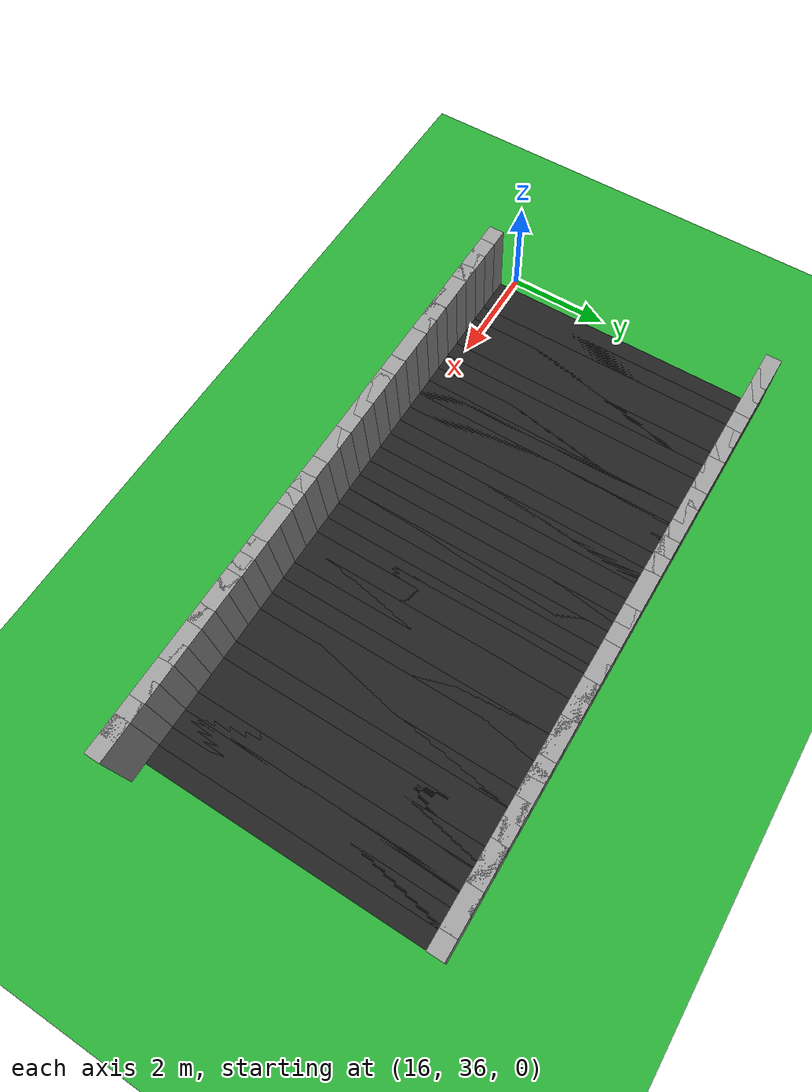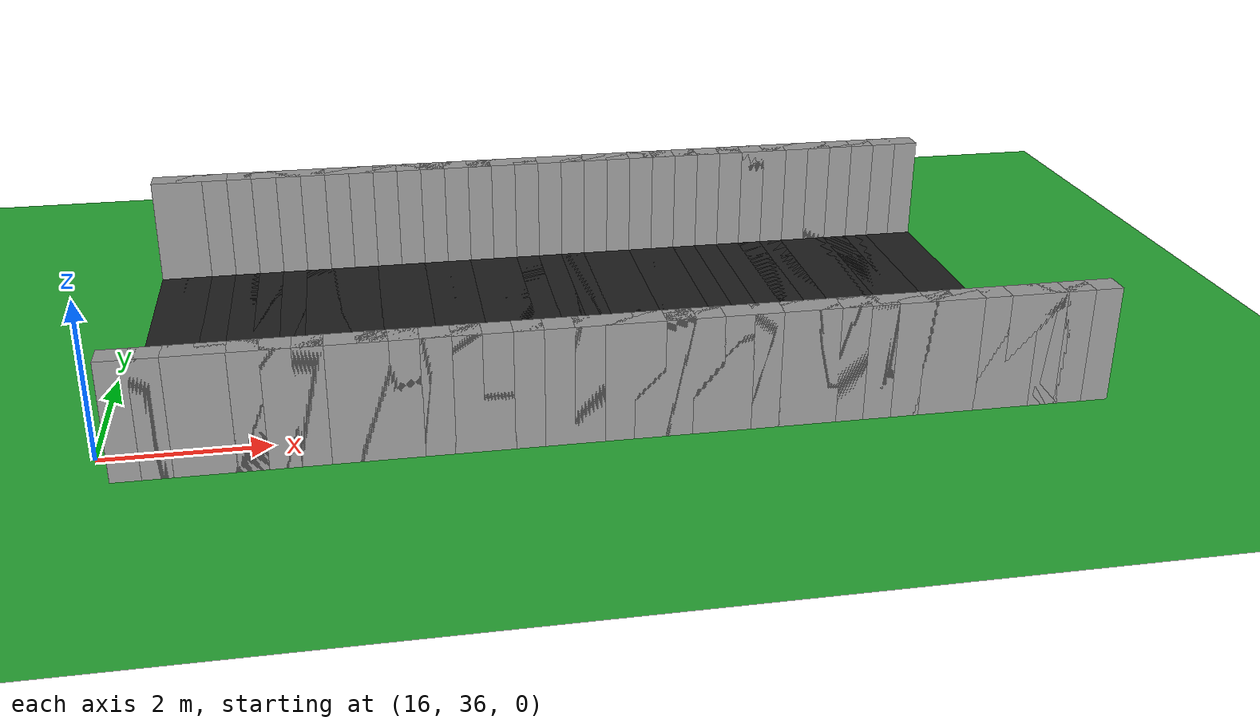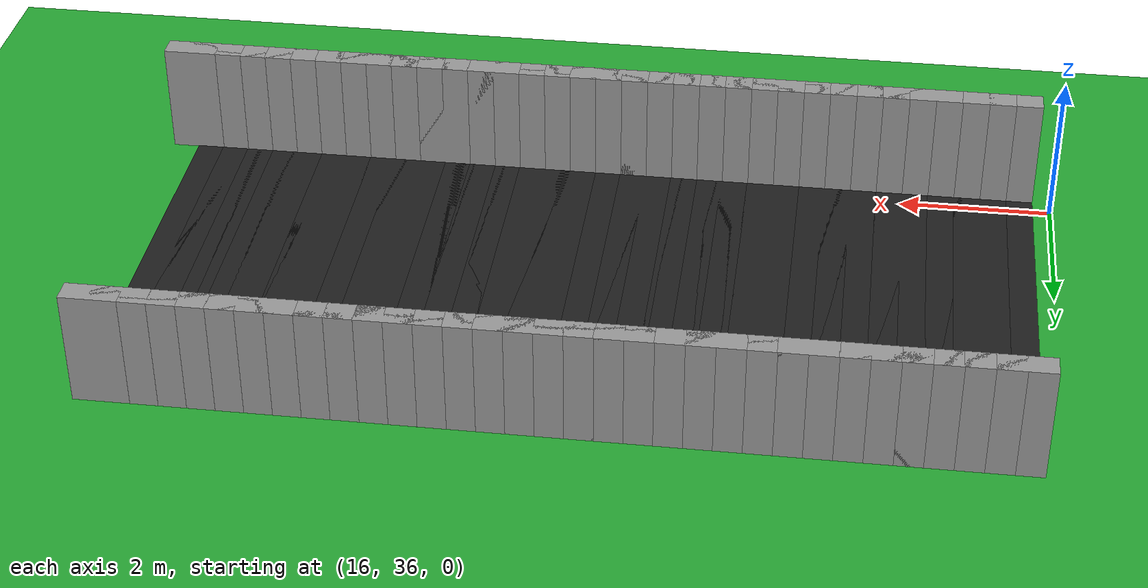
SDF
<sdf version="1.6">
 <world name="loop_speedloop">
  <include><uri>model://sun</uri></include>
  <model name="ground_plane">
   <static>true</static>
   <link name="link">
    <collision name="collision">
     <surface><friction><ode><mu>100</mu><mu2>50</mu2></ode></friction></surface>
     <geometry><plane><normal>0 0 1</normal><size>120 120</size></plane></geometry>
    </collision>
    <visual name="visual">
     <geometry><plane><normal>0 0 1</normal><size>120 120</size></plane></geometry>
     <material>
      <script><uri>file://media/materials/scripts/gazebo.material</uri><name>Gazebo/Green</name></script>
     </material>
    </visual>
   </link>
  </model>
  <model name="curbL_273">
   <static>true</static>
   <pose>27.776 35.602 0.750 0 0 3.14159</pose>
   <link name="link">
    <collision name="collision"><geometry><box><size>0.710 0.300 1.500</size></box></geometry></collision>
    <visual name="visual">
     <geometry><box><size>0.710 0.300 1.500</size></box></geometry>
     <material>
      <script><uri>file://media/materials/scripts/gazebo.material</uri><name>Gazebo/Grey</name></script>
     </material>
    </visual>
   </link>
  </model>
  <model name="asphalt_274">
   <static>true</static>
   <pose>27.426 38.502 0.005 0 0 3.14159</pose>
   <link name="link">
    <visual name="visual">
     <geometry><box><size>0.710 5.500 0.010</size></box></geometry>
     <material>
      <script><uri>file://media/materials/scripts/gazebo.material</uri><name>Gazebo/Black</name></script>
     </material>
    </visual>
   </link>
  </model>
  <model name="curbL_274">
   <static>true</static>
   <pose>27.426 35.602 0.750 0 0 3.14159</pose>
   <link name="link">
    <collision name="collision"><geometry><box><size>0.710 0.300 1.500</size></box></geometry></collision>
    <visual name="visual">
     <geometry><box><size>0.710 0.300 1.500</size></box></geometry>
     <material>
      <script><uri>file://media/materials/scripts/gazebo.material</uri><name>Gazebo/Grey</name></script>
     </material>
    </visual>
   </link>
  </model>
  <model name="curbR_274">
   <static>true</static>
   <pose>27.426 41.402 0.750 0 0 3.14159</pose>
   <link name="link">
    <collision name="collision"><geometry><box><size>0.710 0.300 1.500</size></box></geometry></collision>
    <visual name="visual">
     <geometry><box><size>0.710 0.300 1.500</size></box></geometry>
     <material>
      <script><uri>file://media/materials/scripts/gazebo.material</uri><name>Gazebo/Grey</name></script>
     </material>
    </visual>
   </link>
  </model>
  <model name="asphalt_275">
   <static>true</static>
   <pose>27.076 38.502 0.005 0 0 3.14159</pose>
   <link name="link">
    <visual name="visual">
     <geometry><box><size>0.710 5.500 0.010</size></box></geometry>
     <material>
      <script><uri>file://media/materials/scripts/gazebo.material</uri><name>Gazebo/Black</name></script>
     </material>
    </visual>
   </link>
  </model>
  <model name="curbL_275">
   <static>true</static>
   <pose>27.076 35.602 0.750 0 0 3.14159</pose>
   <link name="link">
    <collision name="collision"><geometry><box><size>0.710 0.300 1.500</size></box></geometry></collision>
    <visual name="visual">
     <geometry><box><size>0.710 0.300 1.500</size></box></geometry>
     <material>
      <script><uri>file://media/materials/scripts/gazebo.material</uri><name>Gazebo/Grey</name></script>
     </material>
    </visual>
   </link>
  </model>
  <model name="curbR_275">
   <static>true</static>
   <pose>27.076 41.402 0.750 0 0 3.14159</pose>
   <link name="link">
    <collision name="collision"><geometry><box><size>0.710 0.300 1.500</size></box></geometry></collision>
    <visual name="visual">
     <geometry><box><size>0.710 0.300 1.500</size></box></geometry>
     <material>
      <script><uri>file://media/materials/scripts/gazebo.material</uri><name>Gazebo/Grey</name></script>
     </material>
    </visual>
   </link>
  </model>
  <model name="asphalt_276">
   <static>true</static>
   <pose>26.726 38.502 0.005 0 0 3.14159</pose>
   <link name="link">
    <visual name="visual">
     <geometry><box><size>0.710 5.500 0.010</size></box></geometry>
     <material>
      <script><uri>file://media/materials/scripts/gazebo.material</uri><name>Gazebo/Black</name></script>
     </material>
    </visual>
   </link>
  </model>
  <model name="curbL_276">
   <static>true</static>
   <pose>26.726 35.602 0.750 0 0 3.14159</pose>
   <link name="link">
    <collision name="collision"><geometry><box><size>0.710 0.300 1.500</size></box></geometry></collision>
    <visual name="visual">
     <geometry><box><size>0.710 0.300 1.500</size></box></geometry>
     <material>
      <script><uri>file://media/materials/scripts/gazebo.material</uri><name>Gazebo/Grey</name></script>
     </material>
    </visual>
   </link>
  </model>
  <model name="curbR_276">
   <static>true</static>
   <pose>26.726 41.402 0.750 0 0 3.14159</pose>
   <link name="link">
    <collision name="collision"><geometry><box><size>0.710 0.300 1.500</size></box></geometry></collision>
    <visual name="visual">
     <geometry><box><size>0.710 0.300 1.500</size></box></geometry>
     <material>
      <script><uri>file://media/materials/scripts/gazebo.material</uri><name>Gazebo/Grey</name></script>
     </material>
    </visual>
   </link>
  </model>
  <model name="asphalt_277">
   <static>true</static>
   <pose>26.376 38.502 0.005 0 0 3.14159</pose>
   <link name="link">
    <visual name="visual">
     <geometry><box><size>0.710 5.500 0.010</size></box></geometry>
     <material>
      <script><uri>file://media/materials/scripts/gazebo.material</uri><name>Gazebo/Black</name></script>
     </material>
    </visual>
   </link>
  </model>
  <model name="curbL_277">
   <static>true</static>
   <pose>26.376 35.602 0.750 0 0 3.14159</pose>
   <link name="link">
    <collision name="collision"><geometry><box><size>0.710 0.300 1.500</size></box></geometry></collision>
    <visual name="visual">
     <geometry><box><size>0.710 0.300 1.500</size></box></geometry>
     <material>
      <script><uri>file://media/materials/scripts/gazebo.material</uri><name>Gazebo/Grey</name></script>
     </material>
    </visual>
   </link>
  </model>
  <model name="curbR_277">
   <static>true</static>
   <pose>26.376 41.402 0.750 0 0 3.14159</pose>
   <link name="link">
    <collision name="collision"><geometry><box><size>0.710 0.300 1.500</size></box></geometry></collision>
    <visual name="visual">
     <geometry><box><size>0.710 0.300 1.500</size></box></geometry>
     <material>
      <script><uri>file://media/materials/scripts/gazebo.material</uri><name>Gazebo/Grey</name></script>
     </material>
    </visual>
   </link>
  </model>
  <model name="asphalt_278">
   <static>true</static>
   <pose>26.026 38.502 0.005 0 0 3.14159</pose>
   <link name="link">
    <visual name="visual">
     <geometry><box><size>0.710 5.500 0.010</size></box></geometry>
     <material>
      <script><uri>file://media/materials/scripts/gazebo.material</uri><name>Gazebo/Black</name></script>
     </material>
    </visual>
   </link>
  </model>
  <model name="curbL_278">
   <static>true</static>
   <pose>26.026 35.602 0.750 0 0 3.14159</pose>
   <link name="link">
    <collision name="collision"><geometry><box><size>0.710 0.300 1.500</size></box></geometry></collision>
    <visual name="visual">
     <geometry><box><size>0.710 0.300 1.500</size></box></geometry>
     <material>
      <script><uri>file://media/materials/scripts/gazebo.material</uri><name>Gazebo/Grey</name></script>
     </material>
    </visual>
   </link>
  </model>
  <model name="curbR_278">
   <static>true</static>
   <pose>26.026 41.402 0.750 0 0 3.14159</pose>
   <link name="link">
    <collision name="collision"><geometry><box><size>0.710 0.300 1.500</size></box></geometry></collision>
    <visual name="visual">
     <geometry><box><size>0.710 0.300 1.500</size></box></geometry>
     <material>
      <script><uri>file://media/materials/scripts/gazebo.material</uri><name>Gazebo/Grey</name></script>
     </material>
    </visual>
   </link>
  </model>
  <model name="asphalt_279">
   <static>true</static>
   <pose>25.676 38.502 0.005 0 0 3.14159</pose>
   <link name="link">
    <visual name="visual">
     <geometry><box><size>0.710 5.500 0.010</size></box></geometry>
     <material>
      <script><uri>file://media/materials/scripts/gazebo.material</uri><name>Gazebo/Black</name></script>
     </material>
    </visual>
   </link>
  </model>
  <model name="curbL_279">
   <static>true</static>
   <pose>25.676 35.602 0.750 0 0 3.14159</pose>
   <link name="link">
    <collision name="collision"><geometry><box><size>0.710 0.300 1.500</size></box></geometry></collision>
    <visual name="visual">
     <geometry><box><size>0.710 0.300 1.500</size></box></geometry>
     <material>
      <script><uri>file://media/materials/scripts/gazebo.material</uri><name>Gazebo/Grey</name></script>
     </material>
    </visual>
   </link>
  </model>
  <model name="curbR_279">
   <static>true</static>
   <pose>25.676 41.402 0.750 0 0 3.14159</pose>
   <link name="link">
    <collision name="collision"><geometry><box><size>0.710 0.300 1.500</size></box></geometry></collision>
    <visual name="visual">
     <geometry><box><size>0.710 0.300 1.500</size></box></geometry>
     <material>
      <script><uri>file://media/materials/scripts/gazebo.material</uri><name>Gazebo/Grey</name></script>
     </material>
    </visual>
   </link>
  </model>
  <model name="asphalt_280">
   <static>true</static>
   <pose>25.326 38.502 0.005 0 0 3.14159</pose>
   <link name="link">
    <visual name="visual">
     <geometry><box><size>0.710 5.500 0.010</size></box></geometry>
     <material>
      <script><uri>file://media/materials/scripts/gazebo.material</uri><name>Gazebo/Black</name></script>
     </material>
    </visual>
   </link>
  </model>
  <model name="curbL_280">
   <static>true</static>
   <pose>25.326 35.602 0.750 0 0 3.14159</pose>
   <link name="link">
    <collision name="collision"><geometry><box><size>0.710 0.300 1.500</size></box></geometry></collision>
    <visual name="visual">
     <geometry><box><size>0.710 0.300 1.500</size></box></geometry>
     <material>
      <script><uri>file://media/materials/scripts/gazebo.material</uri><name>Gazebo/Grey</name></script>
     </material>
    </visual>
   </link>
  </model>
  <model name="curbR_280">
   <static>true</static>
   <pose>25.326 41.402 0.750 0 0 3.14159</pose>
   <link name="link">
    <collision name="collision"><geometry><box><size>0.710 0.300 1.500</size></box></geometry></collision>
    <visual name="visual">
     <geometry><box><size>0.710 0.300 1.500</size></box></geometry>
     <material>
      <script><uri>file://media/materials/scripts/gazebo.material</uri><name>Gazebo/Grey</name></script>
     </material>
    </visual>
   </link>
  </model>
  <model name="asphalt_281">
   <static>true</static>
   <pose>24.976 38.502 0.005 0 0 3.14159</pose>
   <link name="link">
    <visual name="visual">
     <geometry><box><size>0.710 5.500 0.010</size></box></geometry>
     <material>
      <script><uri>file://media/materials/scripts/gazebo.material</uri><name>Gazebo/Black</name></script>
     </material>
    </visual>
   </link>
  </model>
  <model name="curbL_281">
   <static>true</static>
   <pose>24.976 35.602 0.750 0 0 3.14159</pose>
   <link name="link">
    <collision name="collision"><geometry><box><size>0.710 0.300 1.500</size></box></geometry></collision>
    <visual name="visual">
     <geometry><box><size>0.710 0.300 1.500</size></box></geometry>
     <material>
      <script><uri>file://media/materials/scripts/gazebo.material</uri><name>Gazebo/Grey</name></script>
     </material>
    </visual>
   </link>
  </model>
  <model name="curbR_281">
   <static>true</static>
   <pose>24.976 41.402 0.750 0 0 3.14159</pose>
   <link name="link">
    <collision name="collision"><geometry><box><size>0.710 0.300 1.500</size></box></geometry></collision>
    <visual name="visual">
     <geometry><box><size>0.710 0.300 1.500</size></box></geometry>
     <material>
      <script><uri>file://media/materials/scripts/gazebo.material</uri><name>Gazebo/Grey</name></script>
     </material>
    </visual>
   </link>
  </model>
  <model name="asphalt_282">
   <static>true</static>
   <pose>24.626 38.502 0.005 0 0 3.14159</pose>
   <link name="link">
    <visual name="visual">
     <geometry><box><size>0.710 5.500 0.010</size></box></geometry>
     <material>
      <script><uri>file://media/materials/scripts/gazebo.material</uri><name>Gazebo/Black</name></script>
     </material>
    </visual>
   </link>
  </model>
  <model name="curbL_282">
   <static>true</static>
   <pose>24.626 35.602 0.750 0 0 3.14159</pose>
   <link name="link">
    <collision name="collision"><geometry><box><size>0.710 0.300 1.500</size></box></geometry></collision>
    <visual name="visual">
     <geometry><box><size>0.710 0.300 1.500</size></box></geometry>
     <material>
      <script><uri>file://media/materials/scripts/gazebo.material</uri><name>Gazebo/Grey</name></script>
     </material>
    </visual>
   </link>
  </model>
  <model name="curbR_282">
   <static>true</static>
   <pose>24.626 41.402 0.750 0 0 3.14159</pose>
   <link name="link">
    <collision name="collision"><geometry><box><size>0.710 0.300 1.500</size></box></geometry></collision>
    <visual name="visual">
     <geometry><box><size>0.710 0.300 1.500</size></box></geometry>
     <material>
      <script><uri>file://media/materials/scripts/gazebo.material</uri><name>Gazebo/Grey</name></script>
     </material>
    </visual>
   </link>
  </model>
  <model name="asphalt_283">
   <static>true</static>
   <pose>24.276 38.502 0.005 0 0 3.14159</pose>
   <link name="link">
    <visual name="visual">
     <geometry><box><size>0.710 5.500 0.010</size></box></geometry>
     <material>
      <script><uri>file://media/materials/scripts/gazebo.material</uri><name>Gazebo/Black</name></script>
     </material>
    </visual>
   </link>
  </model>
  <model name="curbL_283">
   <static>true</static>
   <pose>24.276 35.602 0.750 0 0 3.14159</pose>
   <link name="link">
    <collision name="collision"><geometry><box><size>0.710 0.300 1.500</size></box></geometry></collision>
    <visual name="visual">
     <geometry><box><size>0.710 0.300 1.500</size></box></geometry>
     <material>
      <script><uri>file://media/materials/scripts/gazebo.material</uri><name>Gazebo/Grey</name></script>
     </material>
    </visual>
   </link>
  </model>
  <model name="curbR_283">
   <static>true</static>
   <pose>24.276 41.402 0.750 0 0 3.14159</pose>
   <link name="link">
    <collision name="collision"><geometry><box><size>0.710 0.300 1.500</size></box></geometry></collision>
    <visual name="visual">
     <geometry><box><size>0.710 0.300 1.500</size></box></geometry>
     <material>
      <script><uri>file://media/materials/scripts/gazebo.material</uri><name>Gazebo/Grey</name></script>
     </material>
    </visual>
   </link>
  </model>
  <model name="asphalt_284">
   <static>true</static>
   <pose>23.926 38.502 0.005 0 0 3.14159</pose>
   <link name="link">
    <visual name="visual">
     <geometry><box><size>0.710 5.500 0.010</size></box></geometry>
     <material>
      <script><uri>file://media/materials/scripts/gazebo.material</uri><name>Gazebo/Black</name></script>
     </material>
    </visual>
   </link>
  </model>
  <model name="curbL_284">
   <static>true</static>
   <pose>23.926 35.602 0.750 0 0 3.14159</pose>
   <link name="link">
    <collision name="collision"><geometry><box><size>0.710 0.300 1.500</size></box></geometry></collision>
    <visual name="visual">
     <geometry><box><size>0.710 0.300 1.500</size></box></geometry>
     <material>
      <script><uri>file://media/materials/scripts/gazebo.material</uri><name>Gazebo/Grey</name></script>
     </material>
    </visual>
   </link>
  </model>
  <model name="curbR_284">
   <static>true</static>
   <pose>23.926 41.402 0.750 0 0 3.14159</pose>
   <link name="link">
    <collision name="collision"><geometry><box><size>0.710 0.300 1.500</size></box></geometry></collision>
    <visual name="visual">
     <geometry><box><size>0.710 0.300 1.500</size></box></geometry>
     <material>
      <script><uri>file://media/materials/scripts/gazebo.material</uri><name>Gazebo/Grey</name></script>
     </material>
    </visual>
   </link>
  </model>
  <model name="asphalt_285">
   <static>true</static>
   <pose>23.576 38.502 0.005 0 0 3.14159</pose>
   <link name="link">
    <visual name="visual">
     <geometry><box><size>0.710 5.500 0.010</size></box></geometry>
     <material>
      <script><uri>file://media/materials/scripts/gazebo.material</uri><name>Gazebo/Black</name></script>
     </material>
    </visual>
   </link>
  </model>
  <model name="curbL_285">
   <static>true</static>
   <pose>23.576 35.602 0.750 0 0 3.14159</pose>
   <link name="link">
    <collision name="collision"><geometry><box><size>0.710 0.300 1.500</size></box></geometry></collision>
    <visual name="visual">
     <geometry><box><size>0.710 0.300 1.500</size></box></geometry>
     <material>
      <script><uri>file://media/materials/scripts/gazebo.material</uri><name>Gazebo/Grey</name></script>
     </material>
    </visual>
   </link>
  </model>
  <model name="curbR_285">
   <static>true</static>
   <pose>23.576 41.402 0.750 0 0 3.14159</pose>
   <link name="link">
    <collision name="collision"><geometry><box><size>0.710 0.300 1.500</size></box></geometry></collision>
    <visual name="visual">
     <geometry><box><size>0.710 0.300 1.500</size></box></geometry>
     <material>
      <script><uri>file://media/materials/scripts/gazebo.material</uri><name>Gazebo/Grey</name></script>
     </material>
    </visual>
   </link>
  </model>
  <model name="asphalt_286">
   <static>true</static>
   <pose>23.226 38.502 0.005 0 0 3.14159</pose>
   <link name="link">
    <visual name="visual">
     <geometry><box><size>0.710 5.500 0.010</size></box></geometry>
     <material>
      <script><uri>file://media/materials/scripts/gazebo.material</uri><name>Gazebo/Black</name></script>
     </material>
    </visual>
   </link>
  </model>
  <model name="curbL_286">
   <static>true</static>
   <pose>23.226 35.602 0.750 0 0 3.14159</pose>
   <link name="link">
    <collision name="collision"><geometry><box><size>0.710 0.300 1.500</size></box></geometry></collision>
    <visual name="visual">
     <geometry><box><size>0.710 0.300 1.500</size></box></geometry>
     <material>
      <script><uri>file://media/materials/scripts/gazebo.material</uri><name>Gazebo/Grey</name></script>
     </material>
    </visual>
   </link>
  </model>
  <model name="curbR_286">
   <static>true</static>
   <pose>23.226 41.402 0.750 0 0 3.14159</pose>
   <link name="link">
    <collision name="collision"><geometry><box><size>0.710 0.300 1.500</size></box></geometry></collision>
    <visual name="visual">
     <geometry><box><size>0.710 0.300 1.500</size></box></geometry>
     <material>
      <script><uri>file://media/materials/scripts/gazebo.material</uri><name>Gazebo/Grey</name></script>
     </material>
    </visual>
   </link>
  </model>
  <model name="asphalt_287">
   <static>true</static>
   <pose>22.876 38.502 0.005 0 0 3.14159</pose>
   <link name="link">
    <visual name="visual">
     <geometry><box><size>0.710 5.500 0.010</size></box></geometry>
     <material>
      <script><uri>file://media/materials/scripts/gazebo.material</uri><name>Gazebo/Black</name></script>
     </material>
    </visual>
   </link>
  </model>
  <model name="curbL_287">
   <static>true</static>
   <pose>22.876 35.602 0.750 0 0 3.14159</pose>
   <link name="link">
    <collision name="collision"><geometry><box><size>0.710 0.300 1.500</size></box></geometry></collision>
    <visual name="visual">
     <geometry><box><size>0.710 0.300 1.500</size></box></geometry>
     <material>
      <script><uri>file://media/materials/scripts/gazebo.material</uri><name>Gazebo/Grey</name></script>
     </material>
    </visual>
   </link>
  </model>
  <model name="curbR_287">
   <static>true</static>
   <pose>22.876 41.402 0.750 0 0 3.14159</pose>
   <link name="link">
    <collision name="collision"><geometry><box><size>0.710 0.300 1.500</size></box></geometry></collision>
    <visual name="visual">
     <geometry><box><size>0.710 0.300 1.500</size></box></geometry>
     <material>
      <script><uri>file://media/materials/scripts/gazebo.material</uri><name>Gazebo/Grey</name></script>
     </material>
    </visual>
   </link>
  </model>
  <model name="asphalt_288">
   <static>true</static>
   <pose>22.526 38.502 0.005 0 0 3.14159</pose>
   <link name="link">
    <visual name="visual">
     <geometry><box><size>0.710 5.500 0.010</size></box></geometry>
     <material>
      <script><uri>file://media/materials/scripts/gazebo.material</uri><name>Gazebo/Black</name></script>
     </material>
    </visual>
   </link>
  </model>
  <model name="curbL_288">
   <static>true</static>
   <pose>22.526 35.602 0.750 0 0 3.14159</pose>
   <link name="link">
    <collision name="collision"><geometry><box><size>0.710 0.300 1.500</size></box></geometry></collision>
    <visual name="visual">
     <geometry><box><size>0.710 0.300 1.500</size></box></geometry>
     <material>
      <script><uri>file://media/materials/scripts/gazebo.material</uri><name>Gazebo/Grey</name></script>
     </material>
    </visual>
   </link>
  </model>
  <model name="curbR_288">
   <static>true</static>
   <pose>22.526 41.402 0.750 0 0 3.14159</pose>
   <link name="link">
    <collision name="collision"><geometry><box><size>0.710 0.300 1.500</size></box></geometry></collision>
    <visual name="visual">
     <geometry><box><size>0.710 0.300 1.500</size></box></geometry>
     <material>
      <script><uri>file://media/materials/scripts/gazebo.material</uri><name>Gazebo/Grey</name></script>
     </material>
    </visual>
   </link>
  </model>
  <model name="asphalt_289">
   <static>true</static>
   <pose>22.176 38.502 0.005 0 0 3.14159</pose>
   <link name="link">
    <visual name="visual">
     <geometry><box><size>0.710 5.500 0.010</size></box></geometry>
     <material>
      <script><uri>file://media/materials/scripts/gazebo.material</uri><name>Gazebo/Black</name></script>
     </material>
    </visual>
   </link>
  </model>
  <model name="curbL_289">
   <static>true</static>
   <pose>22.176 35.602 0.750 0 0 3.14159</pose>
   <link name="link">
    <collision name="collision"><geometry><box><size>0.710 0.300 1.500</size></box></geometry></collision>
    <visual name="visual">
     <geometry><box><size>0.710 0.300 1.500</size></box></geometry>
     <material>
      <script><uri>file://media/materials/scripts/gazebo.material</uri><name>Gazebo/Grey</name></script>
     </material>
    </visual>
   </link>
  </model>
  <model name="curbR_289">
   <static>true</static>
   <pose>22.176 41.402 0.750 0 0 3.14159</pose>
   <link name="link">
    <collision name="collision"><geometry><box><size>0.710 0.300 1.500</size></box></geometry></collision>
    <visual name="visual">
     <geometry><box><size>0.710 0.300 1.500</size></box></geometry>
     <material>
      <script><uri>file://media/materials/scripts/gazebo.material</uri><name>Gazebo/Grey</name></script>
     </material>
    </visual>
   </link>
  </model>
  <model name="asphalt_290">
   <static>true</static>
   <pose>21.826 38.502 0.005 0 0 3.14159</pose>
   <link name="link">
    <visual name="visual">
     <geometry><box><size>0.710 5.500 0.010</size></box></geometry>
     <material>
      <script><uri>file://media/materials/scripts/gazebo.material</uri><name>Gazebo/Black</name></script>
     </material>
    </visual>
   </link>
  </model>
  <model name="curbL_290">
   <static>true</static>
   <pose>21.826 35.602 0.750 0 0 3.14159</pose>
   <link name="link">
    <collision name="collision"><geometry><box><size>0.710 0.300 1.500</size></box></geometry></collision>
    <visual name="visual">
     <geometry><box><size>0.710 0.300 1.500</size></box></geometry>
     <material>
      <script><uri>file://media/materials/scripts/gazebo.material</uri><name>Gazebo/Grey</name></script>
     </material>
    </visual>
   </link>
  </model>
  <model name="curbR_290">
   <static>true</static>
   <pose>21.826 41.402 0.750 0 0 3.14159</pose>
   <link name="link">
    <collision name="collision"><geometry><box><size>0.710 0.300 1.500</size></box></geometry></collision>
    <visual name="visual">
     <geometry><box><size>0.710 0.300 1.500</size></box></geometry>
     <material>
      <script><uri>file://media/materials/scripts/gazebo.material</uri><name>Gazebo/Grey</name></script>
     </material>
    </visual>
   </link>
  </model>
  <model name="asphalt_291">
   <static>true</static>
   <pose>21.476 38.502 0.005 0 0 3.14159</pose>
   <link name="link">
    <visual name="visual">
     <geometry><box><size>0.710 5.500 0.010</size></box></geometry>
     <material>
      <script><uri>file://media/materials/scripts/gazebo.material</uri><name>Gazebo/Black</name></script>
     </material>
    </visual>
   </link>
  </model>
  <model name="curbL_291">
   <static>true</static>
   <pose>21.476 35.602 0.750 0 0 3.14159</pose>
   <link name="link">
    <collision name="collision"><geometry><box><size>0.710 0.300 1.500</size></box></geometry></collision>
    <visual name="visual">
     <geometry><box><size>0.710 0.300 1.500</size></box></geometry>
     <material>
      <script><uri>file://media/materials/scripts/gazebo.material</uri><name>Gazebo/Grey</name></script>
     </material>
    </visual>
   </link>
  </model>
  <model name="curbR_291">
   <static>true</static>
   <pose>21.476 41.402 0.750 0 0 3.14159</pose>
   <link name="link">
    <collision name="collision"><geometry><box><size>0.710 0.300 1.500</size></box></geometry></collision>
    <visual name="visual">
     <geometry><box><size>0.710 0.300 1.500</size></box></geometry>
     <material>
      <script><uri>file://media/materials/scripts/gazebo.material</uri><name>Gazebo/Grey</name></script>
     </material>
    </visual>
   </link>
  </model>
  <model name="asphalt_292">
   <static>true</static>
   <pose>21.126 38.502 0.005 0 0 3.14159</pose>
   <link name="link">
    <visual name="visual">
     <geometry><box><size>0.710 5.500 0.010</size></box></geometry>
     <material>
      <script><uri>file://media/materials/scripts/gazebo.material</uri><name>Gazebo/Black</name></script>
     </material>
    </visual>
   </link>
  </model>
  <model name="curbL_292">
   <static>true</static>
   <pose>21.126 35.602 0.750 0 0 3.14159</pose>
   <link name="link">
    <collision name="collision"><geometry><box><size>0.710 0.300 1.500</size></box></geometry></collision>
    <visual name="visual">
     <geometry><box><size>0.710 0.300 1.500</size></box></geometry>
     <material>
      <script><uri>file://media/materials/scripts/gazebo.material</uri><name>Gazebo/Grey</name></script>
     </material>
    </visual>
   </link>
  </model>
  <model name="curbR_292">
   <static>true</static>
   <pose>21.126 41.402 0.750 0 0 3.14159</pose>
   <link name="link">
    <collision name="collision"><geometry><box><size>0.710 0.300 1.500</size></box></geometry></collision>
    <visual name="visual">
     <geometry><box><size>0.710 0.300 1.500</size></box></geometry>
     <material>
      <script><uri>file://media/materials/scripts/gazebo.material</uri><name>Gazebo/Grey</name></script>
     </material>
    </visual>
   </link>
  </model>
  <model name="asphalt_293">
   <static>true</static>
   <pose>20.776 38.502 0.005 0 0 3.14159</pose>
   <link name="link">
    <visual name="visual">
     <geometry><box><size>0.710 5.500 0.010</size></box></geometry>
     <material>
      <script><uri>file://media/materials/scripts/gazebo.material</uri><name>Gazebo/Black</name></script>
     </material>
    </visual>
   </link>
  </model>
  <model name="curbL_293">
   <static>true</static>
   <pose>20.776 35.602 0.750 0 0 3.14159</pose>
   <link name="link">
    <collision name="collision"><geometry><box><size>0.710 0.300 1.500</size></box></geometry></collision>
    <visual name="visual">
     <geometry><box><size>0.710 0.300 1.500</size></box></geometry>
     <material>
      <script><uri>file://media/materials/scripts/gazebo.material</uri><name>Gazebo/Grey</name></script>
     </material>
    </visual>
   </link>
  </model>
  <model name="curbR_293">
   <static>true</static>
   <pose>20.776 41.402 0.750 0 0 3.14159</pose>
   <link name="link">
    <collision name="collision"><geometry><box><size>0.710 0.300 1.500</size></box></geometry></collision>
    <visual name="visual">
     <geometry><box><size>0.710 0.300 1.500</size></box></geometry>
     <material>
      <script><uri>file://media/materials/scripts/gazebo.material</uri><name>Gazebo/Grey</name></script>
     </material>
    </visual>
   </link>
  </model>
  <model name="asphalt_294">
   <static>true</static>
   <pose>20.426 38.502 0.005 0 0 3.14159</pose>
   <link name="link">
    <visual name="visual">
     <geometry><box><size>0.710 5.500 0.010</size></box></geometry>
     <material>
      <script><uri>file://media/materials/scripts/gazebo.material</uri><name>Gazebo/Black</name></script>
     </material>
    </visual>
   </link>
  </model>
  <model name="curbL_294">
   <static>true</static>
   <pose>20.426 35.602 0.750 0 0 3.14159</pose>
   <link name="link">
    <collision name="collision"><geometry><box><size>0.710 0.300 1.500</size></box></geometry></collision>
    <visual name="visual">
     <geometry><box><size>0.710 0.300 1.500</size></box></geometry>
     <material>
      <script><uri>file://media/materials/scripts/gazebo.material</uri><name>Gazebo/Grey</name></script>
     </material>
    </visual>
   </link>
  </model>
  <model name="curbR_294">
   <static>true</static>
   <pose>20.426 41.402 0.750 0 0 3.14159</pose>
   <link name="link">
    <collision name="collision"><geometry><box><size>0.710 0.300 1.500</size></box></geometry></collision>
    <visual name="visual">
     <geometry><box><size>0.710 0.300 1.500</size></box></geometry>
     <material>
      <script><uri>file://media/materials/scripts/gazebo.material</uri><name>Gazebo/Grey</name></script>
     </material>
    </visual>
   </link>
  </model>
  <model name="asphalt_295">
   <static>true</static>
   <pose>20.076 38.502 0.005 0 0 3.14159</pose>
   <link name="link">
    <visual name="visual">
     <geometry><box><size>0.710 5.500 0.010</size></box></geometry>
     <material>
      <script><uri>file://media/materials/scripts/gazebo.material</uri><name>Gazebo/Black</name></script>
     </material>
    </visual>
   </link>
  </model>
  <model name="curbL_295">
   <static>true</static>
   <pose>20.076 35.602 0.750 0 0 3.14159</pose>
   <link name="link">
    <collision name="collision"><geometry><box><size>0.710 0.300 1.500</size></box></geometry></collision>
    <visual name="visual">
     <geometry><box><size>0.710 0.300 1.500</size></box></geometry>
     <material>
      <script><uri>file://media/materials/scripts/gazebo.material</uri><name>Gazebo/Grey</name></script>
     </material>
    </visual>
   </link>
  </model>
  <model name="curbR_295">
   <static>true</static>
   <pose>20.076 41.402 0.750 0 0 3.14159</pose>
   <link name="link">
    <collision name="collision"><geometry><box><size>0.710 0.300 1.500</size></box></geometry></collision>
    <visual name="visual">
     <geometry><box><size>0.710 0.300 1.500</size></box></geometry>
     <material>
      <script><uri>file://media/materials/scripts/gazebo.material</uri><name>Gazebo/Grey</name></script>
     </material>
    </visual>
   </link>
  </model>
  <model name="asphalt_296">
   <static>true</static>
   <pose>19.726 38.502 0.005 0 0 3.14159</pose>
   <link name="link">
    <visual name="visual">
     <geometry><box><size>0.710 5.500 0.010</size></box></geometry>
     <material>
      <script><uri>file://media/materials/scripts/gazebo.material</uri><name>Gazebo/Black</name></script>
     </material>
    </visual>
   </link>
  </model>
  <model name="curbL_296">
   <static>true</static>
   <pose>19.726 35.602 0.750 0 0 3.14159</pose>
   <link name="link">
    <collision name="collision"><geometry><box><size>0.710 0.300 1.500</size></box></geometry></collision>
    <visual name="visual">
     <geometry><box><size>0.710 0.300 1.500</size></box></geometry>
     <material>
      <script><uri>file://media/materials/scripts/gazebo.material</uri><name>Gazebo/Grey</name></script>
     </material>
    </visual>
   </link>
  </model>
  <model name="curbR_296">
   <static>true</static>
   <pose>19.726 41.402 0.750 0 0 3.14159</pose>
   <link name="link">
    <collision name="collision"><geometry><box><size>0.710 0.300 1.500</size></box></geometry></collision>
    <visual name="visual">
     <geometry><box><size>0.710 0.300 1.500</size></box></geometry>
     <material>
      <script><uri>file://media/materials/scripts/gazebo.material</uri><name>Gazebo/Grey</name></script>
     </material>
    </visual>
   </link>
  </model>
  <model name="asphalt_297">
   <static>true</static>
   <pose>19.376 38.502 0.005 0 0 3.14159</pose>
   <link name="link">
    <visual name="visual">
     <geometry><box><size>0.710 5.500 0.010</size></box></geometry>
     <material>
      <script><uri>file://media/materials/scripts/gazebo.material</uri><name>Gazebo/Black</name></script>
     </material>
    </visual>
   </link>
  </model>
  <model name="curbL_297">
   <static>true</static>
   <pose>19.376 35.602 0.750 0 0 3.14159</pose>
   <link name="link">
    <collision name="collision"><geometry><box><size>0.710 0.300 1.500</size></box></geometry></collision>
    <visual name="visual">
     <geometry><box><size>0.710 0.300 1.500</size></box></geometry>
     <material>
      <script><uri>file://media/materials/scripts/gazebo.material</uri><name>Gazebo/Grey</name></script>
     </material>
    </visual>
   </link>
  </model>
  <model name="curbR_297">
   <static>true</static>
   <pose>19.376 41.402 0.750 0 0 3.14159</pose>
   <link name="link">
    <collision name="collision"><geometry><box><size>0.710 0.300 1.500</size></box></geometry></collision>
    <visual name="visual">
     <geometry><box><size>0.710 0.300 1.500</size></box></geometry>
     <material>
      <script><uri>file://media/materials/scripts/gazebo.material</uri><name>Gazebo/Grey</name></script>
     </material>
    </visual>
   </link>
  </model>
  <model name="asphalt_298">
   <static>true</static>
   <pose>19.026 38.502 0.005 0 0 3.14159</pose>
   <link name="link">
    <visual name="visual">
     <geometry><box><size>0.710 5.500 0.010</size></box></geometry>
     <material>
      <script><uri>file://media/materials/scripts/gazebo.material</uri><name>Gazebo/Black</name></script>
     </material>
    </visual>
   </link>
  </model>
  <model name="curbL_298">
   <static>true</static>
   <pose>19.026 35.602 0.750 0 0 3.14159</pose>
   <link name="link">
    <collision name="collision"><geometry><box><size>0.710 0.300 1.500</size></box></geometry></collision>
    <visual name="visual">
     <geometry><box><size>0.710 0.300 1.500</size></box></geometry>
     <material>
      <script><uri>file://media/materials/scripts/gazebo.material</uri><name>Gazebo/Grey</name></script>
     </material>
    </visual>
   </link>
  </model>
  <model name="curbR_298">
   <static>true</static>
   <pose>19.026 41.402 0.750 0 0 3.14159</pose>
   <link name="link">
    <collision name="collision"><geometry><box><size>0.710 0.300 1.500</size></box></geometry></collision>
    <visual name="visual">
     <geometry><box><size>0.710 0.300 1.500</size></box></geometry>
     <material>
      <script><uri>file://media/materials/scripts/gazebo.material</uri><name>Gazebo/Grey</name></script>
     </material>
    </visual>
   </link>
  </model>
  <model name="asphalt_299">
   <static>true</static>
   <pose>18.676 38.502 0.005 0 0 3.14159</pose>
   <link name="link">
    <visual name="visual">
     <geometry><box><size>0.710 5.500 0.010</size></box></geometry>
     <material>
      <script><uri>file://media/materials/scripts/gazebo.material</uri><name>Gazebo/Black</name></script>
     </material>
    </visual>
   </link>
  </model>
  <model name="curbL_299">
   <static>true</static>
   <pose>18.676 35.602 0.750 0 0 3.14159</pose>
   <link name="link">
    <collision name="collision"><geometry><box><size>0.710 0.300 1.500</size></box></geometry></collision>
    <visual name="visual">
     <geometry><box><size>0.710 0.300 1.500</size></box></geometry>
     <material>
      <script><uri>file://media/materials/scripts/gazebo.material</uri><name>Gazebo/Grey</name></script>
     </material>
    </visual>
   </link>
  </model>
  <model name="curbR_299">
   <static>true</static>
   <pose>18.676 41.402 0.750 0 0 3.14159</pose>
   <link name="link">
    <collision name="collision"><geometry><box><size>0.710 0.300 1.500</size></box></geometry></collision>
    <visual name="visual">
     <geometry><box><size>0.710 0.300 1.500</size></box></geometry>
     <material>
      <script><uri>file://media/materials/scripts/gazebo.material</uri><name>Gazebo/Grey</name></script>
     </material>
    </visual>
   </link>
  </model>
  <model name="asphalt_300">
   <static>true</static>
   <pose>18.326 38.502 0.005 0 0 3.14159</pose>
   <link name="link">
    <visual name="visual">
     <geometry><box><size>0.710 5.500 0.010</size></box></geometry>
     <material>
      <script><uri>file://media/materials/scripts/gazebo.material</uri><name>Gazebo/Black</name></script>
     </material>
    </visual>
   </link>
  </model>
  <model name="curbL_300">
   <static>true</static>
   <pose>18.326 35.602 0.750 0 0 3.14159</pose>
   <link name="link">
    <collision name="collision"><geometry><box><size>0.710 0.300 1.500</size></box></geometry></collision>
    <visual name="visual">
     <geometry><box><size>0.710 0.300 1.500</size></box></geometry>
     <material>
      <script><uri>file://media/materials/scripts/gazebo.material</uri><name>Gazebo/Grey</name></script>
     </material>
    </visual>
   </link>
  </model>
  <model name="curbR_300">
   <static>true</static>
   <pose>18.326 41.402 0.750 0 0 3.14159</pose>
   <link name="link">
    <collision name="collision"><geometry><box><size>0.710 0.300 1.500</size></box></geometry></collision>
    <visual name="visual">
     <geometry><box><size>0.710 0.300 1.500</size></box></geometry>
     <material>
      <script><uri>file://media/materials/scripts/gazebo.material</uri><name>Gazebo/Grey</name></script>
     </material>
    </visual>
   </link>
  </model>
  <model name="asphalt_301">
   <static>true</static>
   <pose>17.976 38.502 0.005 0 0 3.14159</pose>
   <link name="link">
    <visual name="visual">
     <geometry><box><size>0.710 5.500 0.010</size></box></geometry>
     <material>
      <script><uri>file://media/materials/scripts/gazebo.material</uri><name>Gazebo/Black</name></script>
     </material>
    </visual>
   </link>
  </model>
  <model name="curbL_301">
   <static>true</static>
   <pose>17.976 35.602 0.750 0 0 3.14159</pose>
   <link name="link">
    <collision name="collision"><geometry><box><size>0.710 0.300 1.500</size></box></geometry></collision>
    <visual name="visual">
     <geometry><box><size>0.710 0.300 1.500</size></box></geometry>
     <material>
      <script><uri>file://media/materials/scripts/gazebo.material</uri><name>Gazebo/Grey</name></script>
     </material>
    </visual>
   </link>
  </model>
  <model name="curbR_301">
   <static>true</static>
   <pose>17.976 41.402 0.750 0 0 3.14159</pose>
   <link name="link">
    <collision name="collision"><geometry><box><size>0.710 0.300 1.500</size></box></geometry></collision>
    <visual name="visual">
     <geometry><box><size>0.710 0.300 1.500</size></box></geometry>
     <material>
      <script><uri>file://media/materials/scripts/gazebo.material</uri><name>Gazebo/Grey</name></script>
     </material>
    </visual>
   </link>
  </model>
  <model name="asphalt_302">
   <static>true</static>
   <pose>17.626 38.502 0.005 0 0 3.14159</pose>
   <link name="link">
    <visual name="visual">
     <geometry><box><size>0.710 5.500 0.010</size></box></geometry>
     <material>
      <script><uri>file://media/materials/scripts/gazebo.material</uri><name>Gazebo/Black</name></script>
     </material>
    </visual>
   </link>
  </model>
  <model name="curbL_302">
   <static>true</static>
   <pose>17.626 35.602 0.750 0 0 3.14159</pose>
   <link name="link">
    <collision name="collision"><geometry><box><size>0.710 0.300 1.500</size></box></geometry></collision>
    <visual name="visual">
     <geometry><box><size>0.710 0.300 1.500</size></box></geometry>
     <material>
      <script><uri>file://media/materials/scripts/gazebo.material</uri><name>Gazebo/Grey</name></script>
     </material>
    </visual>
   </link>
  </model>
  <model name="curbR_302">
   <static>true</static>
   <pose>17.626 41.402 0.750 0 0 3.14159</pose>
   <link name="link">
    <collision name="collision"><geometry><box><size>0.710 0.300 1.500</size></box></geometry></collision>
    <visual name="visual">
     <geometry><box><size>0.710 0.300 1.500</size></box></geometry>
     <material>
      <script><uri>file://media/materials/scripts/gazebo.material</uri><name>Gazebo/Grey</name></script>
     </material>
    </visual>
   </link>
  </model>
  <model name="asphalt_303">
   <static>true</static>
   <pose>17.276 38.502 0.005 0 0 3.14159</pose>
   <link name="link">
    <visual name="visual">
     <geometry><box><size>0.710 5.500 0.010</size></box></geometry>
     <material>
      <script><uri>file://media/materials/scripts/gazebo.material</uri><name>Gazebo/Black</name></script>
     </material>
    </visual>
   </link>
  </model>
  <model name="curbL_303">
   <static>true</static>
   <pose>17.276 35.602 0.750 0 0 3.14159</pose>
   <link name="link">
    <collision name="collision"><geometry><box><size>0.710 0.300 1.500</size></box></geometry></collision>
    <visual name="visual">
     <geometry><box><size>0.710 0.300 1.500</size></box></geometry>
     <material>
      <script><uri>file://media/materials/scripts/gazebo.material</uri><name>Gazebo/Grey</name></script>
     </material>
    </visual>
   </link>
  </model>
  <model name="curbR_303">
   <static>true</static>
   <pose>17.276 41.402 0.750 0 0 3.14159</pose>
   <link name="link">
    <collision name="collision"><geometry><box><size>0.710 0.300 1.500</size></box></geometry></collision>
    <visual name="visual">
     <geometry><box><size>0.710 0.300 1.500</size></box></geometry>
     <material>
      <script><uri>file://media/materials/scripts/gazebo.material</uri><name>Gazebo/Grey</name></script>
     </material>
    </visual>
   </link>
  </model>
  <model name="asphalt_304">
   <static>true</static>
   <pose>16.926 38.502 0.005 0 0 3.14159</pose>
   <link name="link">
    <visual name="visual">
     <geometry><box><size>0.710 5.500 0.010</size></box></geometry>
     <material>
      <script><uri>file://media/materials/scripts/gazebo.material</uri><name>Gazebo/Black</name></script>
     </material>
    </visual>
   </link>
  </model>
  <model name="curbL_304">
   <static>true</static>
   <pose>16.926 35.602 0.750 0 0 3.14159</pose>
   <link name="link">
    <collision name="collision"><geometry><box><size>0.710 0.300 1.500</size></box></geometry></collision>
    <visual name="visual">
     <geometry><box><size>0.710 0.300 1.500</size></box></geometry>
     <material>
      <script><uri>file://media/materials/scripts/gazebo.material</uri><name>Gazebo/Grey</name></script>
     </material>
    </visual>
   </link>
  </model>
  <model name="curbR_304">
   <static>true</static>
   <pose>16.926 41.402 0.750 0 0 3.14159</pose>
   <link name="link">
    <collision name="collision"><geometry><box><size>0.710 0.300 1.500</size></box></geometry></collision>
    <visual name="visual">
     <geometry><box><size>0.710 0.300 1.500</size></box></geometry>
     <material>
      <script><uri>file://media/materials/scripts/gazebo.material</uri><name>Gazebo/Grey</name></script>
     </material>
    </visual>
   </link>
  </model>
  <model name="asphalt_305">
   <static>true</static>
   <pose>16.576 38.502 0.005 0 0 3.14159</pose>
   <link name="link">
    <visual name="visual">
     <geometry><box><size>0.710 5.500 0.010</size></box></geometry>
     <material>
      <script><uri>file://media/materials/scripts/gazebo.material</uri><name>Gazebo/Black</name></script>
     </material>
    </visual>
   </link>
  </model>
  <model name="curbL_305">
   <static>true</static>
   <pose>16.576 35.602 0.750 0 0 3.14159</pose>
   <link name="link">
    <collision name="collision"><geometry><box><size>0.710 0.300 1.500</size></box></geometry></collision>
    <visual name="visual">
     <geometry><box><size>0.710 0.300 1.500</size></box></geometry>
     <material>
      <script><uri>file://media/materials/scripts/gazebo.material</uri><name>Gazebo/Grey</name></script>
     </material>
    </visual>
   </link>
  </model>
  <model name="curbR_305">
   <static>true</static>
   <pose>16.576 41.402 0.750 0 0 3.14159</pose>
   <link name="link">
    <collision name="collision"><geometry><box><size>0.710 0.300 1.500</size></box></geometry></collision>
    <visual name="visual">
     <geometry><box><size>0.710 0.300 1.500</size></box></geometry>
     <material>
      <script><uri>file://media/materials/scripts/gazebo.material</uri><name>Gazebo/Grey</name></script>
     </material>
    </visual>
   </link>
  </model>
 </world>
</sdf>
